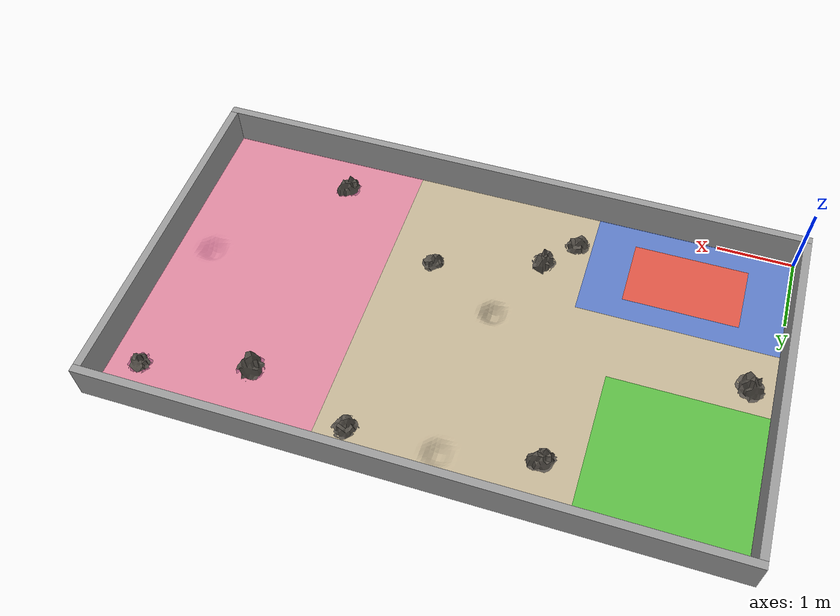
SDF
<?xml version="1.0"?>
<sdf version="1.9">
  <world name="moon_yard">
    <physics name="4ms" type="ignored">
      <max_step_size>0.004</max_step_size>
      <real_time_factor>1.0</real_time_factor>
    </physics>

    <plugin filename="gz-sim-physics-system" name="gz::sim::systems::Physics"/>
    <plugin filename="gz-sim-sensors-system" name="gz::sim::systems::Sensors">
      <render_engine>ogre2</render_engine>
    </plugin>
    <plugin filename="gz-sim-scene-broadcaster-system" name="gz::sim::systems::SceneBroadcaster"/>
    <plugin filename="gz-sim-user-commands-system" name="gz::sim::systems::UserCommands"/>
    <plugin filename="gz-sim-imu-system" name="gz::sim::systems::Imu"/>

    <scene>
      <ambient>0.4 0.4 0.4 1</ambient>
      <background>0.1 0.1 0.12 1</background>
      <shadows>false</shadows>
    </scene>

    <light type="directional" name="sun">
      <cast_shadows>false</cast_shadows>
      <pose>0 0 10 0 0 0</pose>
      <diffuse>0.8 0.8 0.8 1</diffuse>
      <specular>0.1 0.1 0.1 1</specular>
      <direction>-0.4 0.2 -0.9</direction>
    </light>

    <include>
      <uri>model://moon_yard_terrain</uri>
      <name>moon_yard_terrain</name>
      <pose>0 0 0 0 0 0</pose>
    </include>

    <!-- Arena walls: simulation geometry only. -->
    <model name="wall_north">
      <static>true</static>
      <pose>3.95 4.45 0.25 0 0 0</pose>
      <link name="link">
        <collision name="collision">
          <geometry>
            <box>
              <size>8.1 0.1 0.5</size>
            </box>
          </geometry>
        </collision>
        <visual name="visual">
          <geometry>
            <box>
              <size>8.1 0.1 0.5</size>
            </box>
          </geometry>
          <material>
            <ambient>0.6 0.6 0.6 1</ambient>
            <diffuse>0.6 0.6 0.6 1</diffuse>
            <specular>0 0 0 1</specular>
          </material>
        </visual>
      </link>
    </model>

    <model name="wall_south">
      <static>true</static>
      <pose>3.95 -0.05 0.25 0 0 0</pose>
      <link name="link">
        <collision name="collision">
          <geometry>
            <box>
              <size>8.1 0.1 0.5</size>
            </box>
          </geometry>
        </collision>
        <visual name="visual">
          <geometry>
            <box>
              <size>8.1 0.1 0.5</size>
            </box>
          </geometry>
          <material>
            <ambient>0.6 0.6 0.6 1</ambient>
            <diffuse>0.6 0.6 0.6 1</diffuse>
            <specular>0 0 0 1</specular>
          </material>
        </visual>
      </link>
    </model>

    <model name="wall_east">
      <static>true</static>
      <pose>7.95 2.2 0.25 0 0 0</pose>
      <link name="link">
        <collision name="collision">
          <geometry>
            <box>
              <size>0.1 4.4 0.5</size>
            </box>
          </geometry>
        </collision>
        <visual name="visual">
          <geometry>
            <box>
              <size>0.1 4.4 0.5</size>
            </box>
          </geometry>
          <material>
            <ambient>0.6 0.6 0.6 1</ambient>
            <diffuse>0.6 0.6 0.6 1</diffuse>
            <specular>0 0 0 1</specular>
          </material>
        </visual>
      </link>
    </model>

    <model name="wall_west">
      <static>true</static>
      <pose>-0.05 2.2 0.25 0 0 0</pose>
      <link name="link">
        <collision name="collision">
          <geometry>
            <box>
              <size>0.1 4.4 0.5</size>
            </box>
          </geometry>
        </collision>
        <visual name="visual">
          <geometry>
            <box>
              <size>0.1 4.4 0.5</size>
            </box>
          </geometry>
          <material>
            <ambient>0.6 0.6 0.6 1</ambient>
            <diffuse>0.6 0.6 0.6 1</diffuse>
            <specular>0 0 0 1</specular>
          </material>
        </visual>
      </link>
    </model>

    <model name="zone_markers">
      <static>true</static>
      <link name="link">
        <visual name="start_zone">
          <pose>1.0 3.4 0.002 0 0 0</pose>
          <geometry>
            <box>
              <size>2.0 2.0 0.002</size>
            </box>
          </geometry>
          <material>
            <ambient>0 0.8 0 0.5</ambient>
            <diffuse>0 0.8 0 0.5</diffuse>
            <specular>0 0 0 1</specular>
          </material>
        </visual>
        <visual name="construction_zone">
          <pose>1.3 0.75 0.002 0 0 0</pose>
          <geometry>
            <box>
              <size>2.6 1.5 0.002</size>
            </box>
          </geometry>
          <material>
            <ambient>0 0.3 1 0.5</ambient>
            <diffuse>0 0.3 1 0.5</diffuse>
            <specular>0 0 0 1</specular>
          </material>
        </visual>
        <visual name="berm_target_area">
          <pose>1.3 0.75 0.004 0 0 0</pose>
          <geometry>
            <box>
              <size>1.5 0.9 0.002</size>
            </box>
          </geometry>
          <material>
            <ambient>1 0 0 0.5</ambient>
            <diffuse>1 0 0 0.5</diffuse>
            <specular>0 0 0 1</specular>
          </material>
        </visual>
        <visual name="excavation_zone">
          <pose>6.525 2.2 0.002 0 0 0</pose>
          <geometry>
            <box>
              <size>2.75 4.4 0.002</size>
            </box>
          </geometry>
          <material>
            <ambient>1 0.4 0.7 0.5</ambient>
            <diffuse>1 0.4 0.7 0.5</diffuse>
            <specular>0 0 0 1</specular>
          </material>
        </visual>
      </link>
    </model>

    <!-- Beacon frame position and height are unconfirmed with the organisers. -->
    <include>
      <uri>model://apriltag_beacon</uri>
      <name>apriltag_beacon</name>
      <pose>0.25 4.38 0.3 0 0 0</pose>
    </include>

    <!-- Rock positions approximate rulebook Figure 2. -->
    <include>
      <uri>model://rock_a</uri>
      <name>rock_1</name>
      <pose>2.47 3.73 0 0 0 0.5</pose>
    </include>
    <include>
      <uri>model://rock_b</uri>
      <name>rock_2</name>
      <pose>4.79 4.0 0 0 0 1.2</pose>
    </include>
    <include>
      <uri>model://rock_c</uri>
      <name>rock_3</name>
      <pose>0.29 2.04 0 0 0 2.1</pose>
    </include>
    <include>
      <uri>model://rock_d</uri>
      <name>rock_4</name>
      <pose>4.55 1.35 0 0 0 0.8</pose>
    </include>
    <include>
      <uri>model://rock_a</uri>
      <name>rock_5</name>
      <pose>3.16 0.92 0 0 0 1.5</pose>
    </include>
    <include>
      <uri>model://rock_b</uri>
      <name>rock_6</name>
      <pose>2.8 0.52 0 0 0 0.3</pose>
    </include>
    <include>
      <uri>model://rock_c</uri>
      <name>rock_7</name>
      <pose>6.19 3.57 0 0 0 1.8</pose>
    </include>
    <include>
      <uri>model://rock_d</uri>
      <name>rock_8</name>
      <pose>7.53 3.91 0 0 0 2.6</pose>
    </include>
    <include>
      <uri>model://rock_a</uri>
      <name>rock_9</name>
      <pose>6.08 0.47 0 0 0 0.9</pose>
    </include>
  </world>
</sdf>

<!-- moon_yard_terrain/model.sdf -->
<sdf version="1.9">
  <model name="moon_yard_terrain">
    <static>true</static>
    <link name="link">
      <collision name="collision">
        <geometry>
          <mesh>
            <uri>model://moon_yard_terrain/meshes/terrain.obj</uri>
          </mesh>
        </geometry>
        <surface>
          <friction>
            <ode>
              <mu>0.9</mu>
              <mu2>0.9</mu2>
            </ode>
          </friction>
        </surface>
      </collision>
      <visual name="visual">
        <geometry>
          <mesh>
            <uri>model://moon_yard_terrain/meshes/terrain.obj</uri>
          </mesh>
        </geometry>
        <material>
          <ambient>0.76 0.70 0.58 1</ambient>
          <diffuse>0.76 0.70 0.58 1</diffuse>
          <specular>0 0 0 1</specular>
        </material>
      </visual>
    </link>
  </model>
</sdf>

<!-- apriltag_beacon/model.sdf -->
<sdf version="1.9">
  <model name="apriltag_beacon">
    <static>true</static>
    <link name="link">
      <visual name="backing">
        <pose>0 0.006 0 0 0 0</pose>
        <geometry>
          <box>
            <size>0.30 0.01 0.30</size>
          </box>
        </geometry>
        <material>
          <ambient>1 1 1 1</ambient>
          <diffuse>1 1 1 1</diffuse>
          <specular>0 0 0 1</specular>
        </material>
      </visual>
      <visual name="tag">
        <pose>0 0 0 1.5707963 0 0</pose>
        <geometry>
          <plane>
            <normal>0 0 1</normal>
            <size>0.25 0.25</size>
          </plane>
        </geometry>
        <material>
          <ambient>1 1 1 1</ambient>
          <diffuse>1 1 1 1</diffuse>
          <specular>0 0 0 1</specular>
          <pbr>
            <metal>
              <albedo_map>model://apriltag_beacon/materials/textures/tag36_11_00000.png</albedo_map>
            </metal>
          </pbr>
        </material>
      </visual>
    </link>
  </model>
</sdf>

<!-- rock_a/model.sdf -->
<sdf version="1.9">
  <model name="rock_a">
    <static>true</static>
    <link name="link">
      <collision name="collision">
        <geometry>
          <mesh>
            <uri>model://rock_a/meshes/rock.obj</uri>
          </mesh>
        </geometry>
        <surface>
          <friction>
            <ode>
              <mu>0.9</mu>
              <mu2>0.9</mu2>
            </ode>
          </friction>
        </surface>
      </collision>
      <visual name="visual">
        <geometry>
          <mesh>
            <uri>model://rock_a/meshes/rock.obj</uri>
          </mesh>
        </geometry>
        <material>
          <ambient>0.35 0.33 0.30 1</ambient>
          <diffuse>0.35 0.33 0.30 1</diffuse>
          <specular>0 0 0 1</specular>
        </material>
      </visual>
    </link>
  </model>
</sdf>

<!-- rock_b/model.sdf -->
<sdf version="1.9">
  <model name="rock_b">
    <static>true</static>
    <link name="link">
      <collision name="collision">
        <geometry>
          <mesh>
            <uri>model://rock_b/meshes/rock.obj</uri>
          </mesh>
        </geometry>
        <surface>
          <friction>
            <ode>
              <mu>0.9</mu>
              <mu2>0.9</mu2>
            </ode>
          </friction>
        </surface>
      </collision>
      <visual name="visual">
        <geometry>
          <mesh>
            <uri>model://rock_b/meshes/rock.obj</uri>
          </mesh>
        </geometry>
        <material>
          <ambient>0.35 0.33 0.30 1</ambient>
          <diffuse>0.35 0.33 0.30 1</diffuse>
          <specular>0 0 0 1</specular>
        </material>
      </visual>
    </link>
  </model>
</sdf>

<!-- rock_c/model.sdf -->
<sdf version="1.9">
  <model name="rock_c">
    <static>true</static>
    <link name="link">
      <collision name="collision">
        <geometry>
          <mesh>
            <uri>model://rock_c/meshes/rock.obj</uri>
          </mesh>
        </geometry>
        <surface>
          <friction>
            <ode>
              <mu>0.9</mu>
              <mu2>0.9</mu2>
            </ode>
          </friction>
        </surface>
      </collision>
      <visual name="visual">
        <geometry>
          <mesh>
            <uri>model://rock_c/meshes/rock.obj</uri>
          </mesh>
        </geometry>
        <material>
          <ambient>0.35 0.33 0.30 1</ambient>
          <diffuse>0.35 0.33 0.30 1</diffuse>
          <specular>0 0 0 1</specular>
        </material>
      </visual>
    </link>
  </model>
</sdf>

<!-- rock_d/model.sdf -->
<sdf version="1.9">
  <model name="rock_d">
    <static>true</static>
    <link name="link">
      <collision name="collision">
        <geometry>
          <mesh>
            <uri>model://rock_d/meshes/rock.obj</uri>
          </mesh>
        </geometry>
        <surface>
          <friction>
            <ode>
              <mu>0.9</mu>
              <mu2>0.9</mu2>
            </ode>
          </friction>
        </surface>
      </collision>
      <visual name="visual">
        <geometry>
          <mesh>
            <uri>model://rock_d/meshes/rock.obj</uri>
          </mesh>
        </geometry>
        <material>
          <ambient>0.35 0.33 0.30 1</ambient>
          <diffuse>0.35 0.33 0.30 1</diffuse>
          <specular>0 0 0 1</specular>
        </material>
      </visual>
    </link>
  </model>
</sdf>
